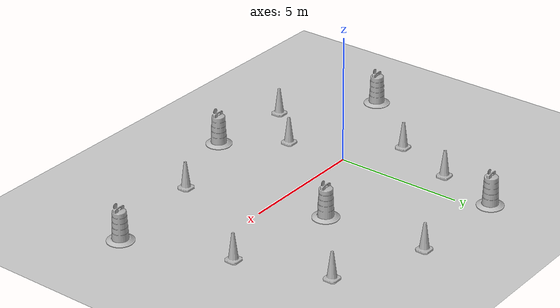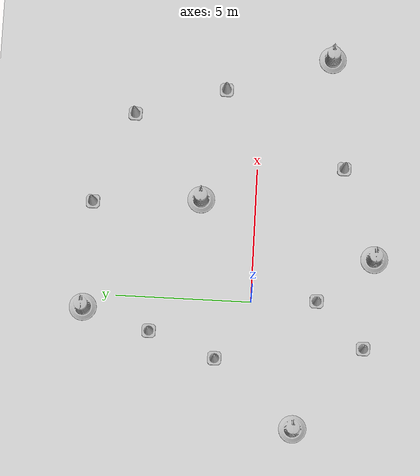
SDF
<sdf version="1.7">
 <world name="default">
  <light name="sun" type="directional">
   <pose>0 0 10 0 -0 0</pose>
   <diffuse>0.8 0.8 0.8 1</diffuse>
   <specular>0.2 0.2 0.2 1</specular>
   <attenuation>
    <range>1000</range>
    <constant>0.9</constant>
    <linear>0.01</linear>
    <quadratic>0.001</quadratic>
   </attenuation>
   <direction>-0.5 0.1 -0.9</direction>
   <spot><inner_angle>0</inner_angle><outer_angle>0</outer_angle><falloff>0</falloff></spot>
  </light>
  <model name="ground_plane">
   <static>1</static>
   <link name="link">
    <collision name="collision">
     <geometry><plane><normal>0 0 1</normal><size>100 100</size></plane></geometry>
     <surface>
      <contact><collide_bitmask>65535</collide_bitmask></contact>
      <friction><ode><mu>100</mu><mu2>50</mu2></ode></friction>
     </surface>
    </collision>
    <visual name="visual">
     <cast_shadows>0</cast_shadows>
     <geometry><plane><normal>0 0 1</normal><size>100 100</size></plane></geometry>
     <material>
      <script><uri>file://media/materials/scripts/gazebo.material</uri><name>Gazebo/Grey</name></script>
     </material>
    </visual>
   </link>
  </model>
  <gravity>0 0 -9.8</gravity>
  <magnetic_field>6e-06 2.3e-05 -4.2e-05</magnetic_field>
  <atmosphere type="adiabatic"/>
  <physics type="ode">
   <max_step_size>0.001</max_step_size>
   <real_time_factor>1</real_time_factor>
   <real_time_update_rate>1000</real_time_update_rate>
  </physics>
  <scene><ambient>0.4 0.4 0.4 1</ambient><background>0.7 0.7 0.7 1</background><shadows>0</shadows></scene>
  <audio><device>default</device></audio>
  <spherical_coordinates>
   <surface_model>EARTH_WGS84</surface_model>
   <latitude_deg>0</latitude_deg>
   <longitude_deg>0</longitude_deg>
   <elevation>0</elevation>
   <heading_deg>0</heading_deg>
  </spherical_coordinates>
  <model name="Construction Cone">
   <link name="link">
    <collision name="collision">
     <geometry>
      <mesh><scale>10 10 10</scale><uri>model://construction_cone/meshes/construction_cone.dae</uri></mesh>
     </geometry>
    </collision>
    <visual name="visual">
     <geometry>
      <mesh><scale>10 10 10</scale><uri>model://construction_cone/meshes/construction_cone.dae</uri></mesh>
     </geometry>
    </visual>
    <inertial>
     <inertia><ixx>1</ixx><ixy>0</ixy><ixz>0</ixz><iyy>1</iyy><iyz>0</iyz><izz>1</izz></inertia>
     <mass>1</mass>
    </inertial>
   </link>
   <pose>0.148573 -2.41951 -1e-05 -0 -0 -0</pose>
  </model>
  <model name="Construction Barrel">
   <link name="link">
    <inertial>
     <pose>0 0 0.4 0 -0 0</pose>
     <mass>500</mass>
     <inertia><ixx>51.2096</ixx><iyy>51.2096</iyy><izz>25</izz><ixy>0</ixy><ixz>0</ixz><iyz>0</iyz></inertia>
    </inertial>
    <collision name="collision">
     <geometry><mesh><uri>model://construction_barrel/meshes/construction_barrel.dae</uri></mesh></geometry>
    </collision>
    <visual name="visual">
     <geometry><mesh><uri>model://construction_barrel/meshes/construction_barrel.dae</uri></mesh></geometry>
    </visual>
   </link>
   <pose>-0.475829 6.18996 1e-06 3e-06 2e-06 -2e-05</pose>
  </model>
  <model name="Construction Barrel_0">
   <link name="link">
    <inertial>
     <pose>0 0 0.4 0 -0 0</pose>
     <mass>500</mass>
     <inertia><ixx>51.2096</ixx><iyy>51.2096</iyy><izz>25</izz><ixy>0</ixy><ixz>0</ixz><iyz>0</iyz></inertia>
    </inertial>
    <collision name="collision">
     <geometry><mesh><uri>model://construction_barrel/meshes/construction_barrel.dae</uri></mesh></geometry>
    </collision>
    <visual name="visual">
     <geometry><mesh><uri>model://construction_barrel/meshes/construction_barrel.dae</uri></mesh></geometry>
    </visual>
   </link>
   <pose>3.75561 2.03252 -0 0 0 -1.8e-05</pose>
  </model>
  <model name="Construction Cone_0">
   <link name="link">
    <collision name="collision">
     <geometry>
      <mesh><scale>10 10 10</scale><uri>model://construction_cone/meshes/construction_cone.dae</uri></mesh>
     </geometry>
    </collision>
    <visual name="visual">
     <geometry>
      <mesh><scale>10 10 10</scale><uri>model://construction_cone/meshes/construction_cone.dae</uri></mesh>
     </geometry>
    </visual>
    <inertial>
     <inertia><ixx>1</ixx><ixy>0</ixy><ixz>0</ixz><iyy>1</iyy><iyz>0</iyz><izz>1</izz></inertia>
     <mass>1</mass>
    </inertial>
   </link>
   <pose>-1.24255 3.71171 -0 0 -1e-06 0</pose>
  </model>
  <model name="Construction Cone_1">
   <link name="link">
    <collision name="collision">
     <geometry>
      <mesh><scale>10 10 10</scale><uri>model://construction_cone/meshes/construction_cone.dae</uri></mesh>
     </geometry>
    </collision>
    <visual name="visual">
     <geometry>
      <mesh><scale>10 10 10</scale><uri>model://construction_cone/meshes/construction_cone.dae</uri></mesh>
     </geometry>
    </visual>
    <inertial>
     <inertia><ixx>1</ixx><ixy>0</ixy><ixz>0</ixz><iyy>1</iyy><iyz>0</iyz><izz>1</izz></inertia>
     <mass>1</mass>
    </inertial>
   </link>
   <pose>-2.1362 1.24693 -1e-05 -1e-06 0 0</pose>
  </model>
  <model name="Construction Barrel_1">
   <link name="link">
    <inertial>
     <pose>0 0 0.4 0 -0 0</pose>
     <mass>500</mass>
     <inertia><ixx>51.2096</ixx><iyy>51.2096</iyy><izz>25</izz><ixy>0</ixy><ixz>0</ixz><iyz>0</iyz></inertia>
    </inertial>
    <collision name="collision">
     <geometry><mesh><uri>model://construction_barrel/meshes/construction_barrel.dae</uri></mesh></geometry>
    </collision>
    <visual name="visual">
     <geometry><mesh><uri>model://construction_barrel/meshes/construction_barrel.dae</uri></mesh></geometry>
    </visual>
   </link>
   <pose>-4.59072 -1.72896 0 0 0 -1.5e-05</pose>
  </model>
  <model name="Construction Barrel_2">
   <link name="link">
    <inertial>
     <pose>0 0 0.4 0 -0 0</pose>
     <mass>500</mass>
     <inertia><ixx>51.2096</ixx><iyy>51.2096</iyy><izz>25</izz><ixy>0</ixy><ixz>0</ixz><iyz>0</iyz></inertia>
    </inertial>
    <collision name="collision">
     <geometry><mesh><uri>model://construction_barrel/meshes/construction_barrel.dae</uri></mesh></geometry>
    </collision>
    <visual name="visual">
     <geometry><mesh><uri>model://construction_barrel/meshes/construction_barrel.dae</uri></mesh></geometry>
    </visual>
   </link>
   <pose>1.80523 -4.48916 -0 1e-06 -1e-06 -1.2e-05</pose>
  </model>
  <model name="Construction Cone_2">
   <link name="link">
    <collision name="collision">
     <geometry>
      <mesh><scale>10 10 10</scale><uri>model://construction_cone/meshes/construction_cone.dae</uri></mesh>
     </geometry>
    </collision>
    <visual name="visual">
     <geometry>
      <mesh><scale>10 10 10</scale><uri>model://construction_cone/meshes/construction_cone.dae</uri></mesh>
     </geometry>
    </visual>
    <inertial>
     <inertia><ixx>1</ixx><ixy>0</ixy><ixz>0</ixz><iyy>1</iyy><iyz>0</iyz><izz>1</izz></inertia>
     <mass>1</mass>
    </inertial>
   </link>
   <pose>5.16974 -3.24194 -0 0 -0 0</pose>
  </model>
  <model name="Construction Cone_3">
   <link name="link">
    <collision name="collision">
     <geometry>
      <mesh><scale>10 10 10</scale><uri>model://construction_cone/meshes/construction_cone.dae</uri></mesh>
     </geometry>
    </collision>
    <visual name="visual">
     <geometry>
      <mesh><scale>10 10 10</scale><uri>model://construction_cone/meshes/construction_cone.dae</uri></mesh>
     </geometry>
    </visual>
    <inertial>
     <inertia><ixx>1</ixx><ixy>0</ixy><ixz>0</ixz><iyy>1</iyy><iyz>0</iyz><izz>1</izz></inertia>
     <mass>1</mass>
    </inertial>
   </link>
   <pose>-1.52491 -4.19992 -0 0 -0 0</pose>
  </model>
  <model name="Construction Cone_4">
   <link name="link">
    <collision name="collision">
     <geometry>
      <mesh><scale>10 10 10</scale><uri>model://construction_cone/meshes/construction_cone.dae</uri></mesh>
     </geometry>
    </collision>
    <visual name="visual">
     <geometry>
      <mesh><scale>10 10 10</scale><uri>model://construction_cone/meshes/construction_cone.dae</uri></mesh>
     </geometry>
    </visual>
    <inertial>
     <inertia><ixx>1</ixx><ixy>0</ixy><ixz>0</ixz><iyy>1</iyy><iyz>0</iyz><izz>1</izz></inertia>
     <mass>1</mass>
    </inertial>
   </link>
   <pose>7.97943 1.28747 -0 0 -1e-06 0</pose>
  </model>
  <model name="Construction Barrel_3">
   <link name="link">
    <inertial>
     <pose>0 0 0.4 0 -0 0</pose>
     <mass>500</mass>
     <inertia><ixx>51.2096</ixx><iyy>51.2096</iyy><izz>25</izz><ixy>0</ixy><ixz>0</ixz><iyz>0</iyz></inertia>
    </inertial>
    <collision name="collision">
     <geometry><mesh><uri>model://construction_barrel/meshes/construction_barrel.dae</uri></mesh></geometry>
    </collision>
    <visual name="visual">
     <geometry><mesh><uri>model://construction_barrel/meshes/construction_barrel.dae</uri></mesh></geometry>
    </visual>
   </link>
   <pose>9.33379 -2.64787 1e-06 2e-06 3e-06 -6e-06</pose>
  </model>
  <model name="Construction Cone_5">
   <link name="link">
    <collision name="collision">
     <geometry>
      <mesh><scale>10 10 10</scale><uri>model://construction_cone/meshes/construction_cone.dae</uri></mesh>
     </geometry>
    </collision>
    <visual name="visual">
     <geometry>
      <mesh><scale>10 10 10</scale><uri>model://construction_cone/meshes/construction_cone.dae</uri></mesh>
     </geometry>
    </visual>
    <inertial>
     <inertia><ixx>1</ixx><ixy>0</ixy><ixz>0</ixz><iyy>1</iyy><iyz>0</iyz><izz>1</izz></inertia>
     <mass>1</mass>
    </inertial>
   </link>
   <pose>3.48835 6.05428 -0 0 -0 0</pose>
  </model>
  <model name="Construction Cone_6">
   <link name="link">
    <collision name="collision">
     <geometry>
      <mesh><scale>10 10 10</scale><uri>model://construction_cone/meshes/construction_cone.dae</uri></mesh>
     </geometry>
    </collision>
    <visual name="visual">
     <geometry>
      <mesh><scale>10 10 10</scale><uri>model://construction_cone/meshes/construction_cone.dae</uri></mesh>
     </geometry>
    </visual>
    <inertial>
     <inertia><ixx>1</ixx><ixy>0</ixy><ixz>0</ixz><iyy>1</iyy><iyz>0</iyz><izz>1</izz></inertia>
     <mass>1</mass>
    </inertial>
   </link>
   <pose>6.90896 4.66228 -0 0 -1e-06 0</pose>
  </model>
 </world>
</sdf>
